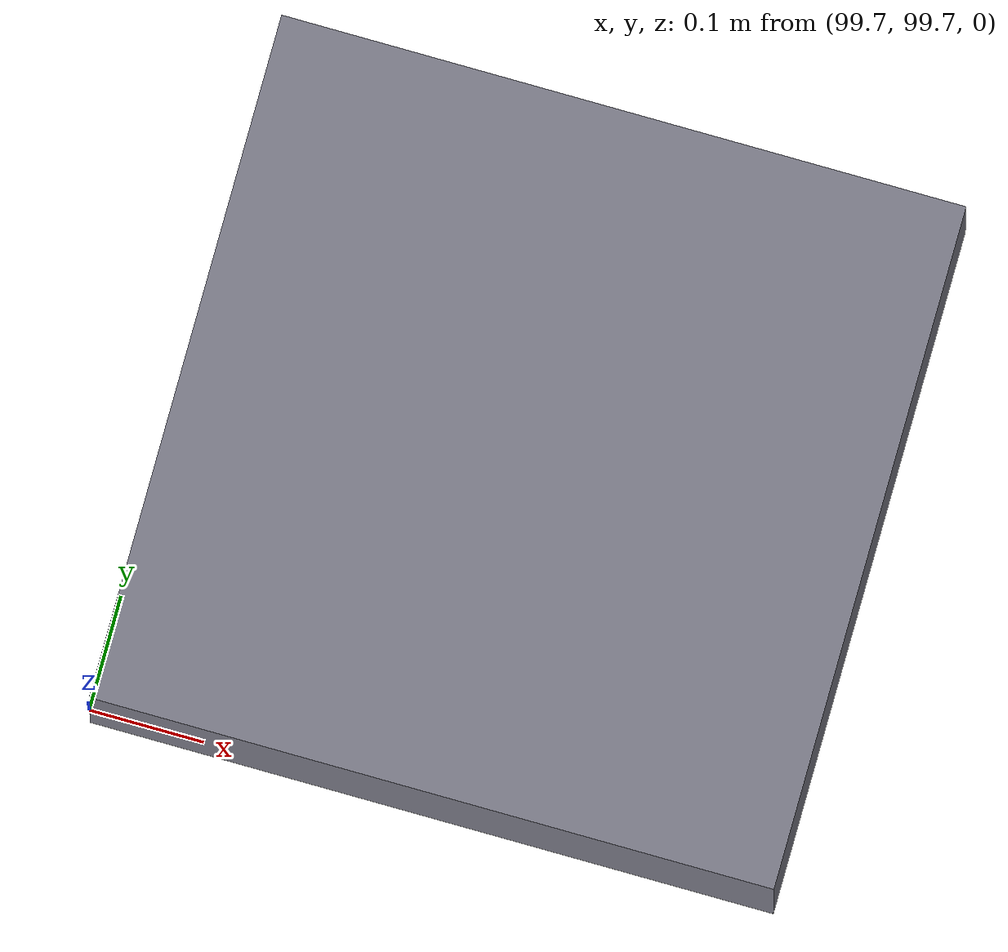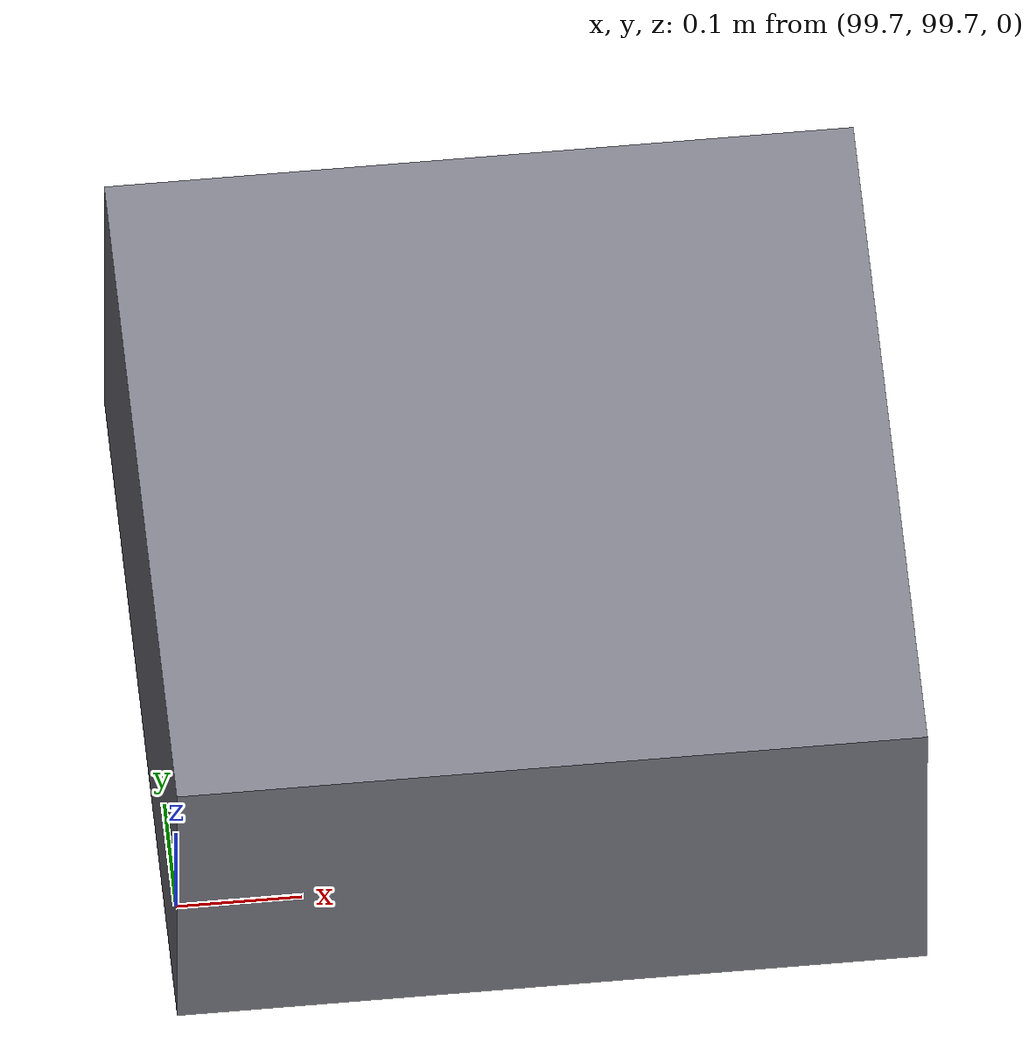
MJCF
<mujoco model="omnicar_skid">
  <compiler angle="degree" coordinate="local"/>
  <option timestep="0.02" gravity="0 0 -9.81" iterations="50"/>

  <worldbody>
    <geom name="floor" type="plane" size="20 20 0.1" rgba="0.92 0.92 0.92 1" friction="1.2 0.005 0.0001"/>

    <!-- Robot -->
    <body name="base" pos="0 0 0.08">
      <freejoint/>
      <geom name="chassis" type="box" size="0.1535 0.1235 0.02" rgba="0.12 0.12 0.12 1" density="250"/>

      <!-- Wheels: cylinder axis along Y (left-right), so rotate cylinder 90deg about X -->
      <body name="wheel_fl" pos="0.105 0.101 0.00">
        <joint name="wheel_fl_hinge" type="hinge" axis="0 1 0" damping="0.05" armature="0.01"/>
        <geom name="wheel_fl_geom" type="cylinder" size="0.0485 0.020" euler="90 0 0" rgba="0.2 0.2 0.2 1" density="300" friction="2.0 0.005 0.0001"/>
      </body>

      <body name="wheel_fr" pos="0.105 -0.101 0.00">
        <joint name="wheel_fr_hinge" type="hinge" axis="0 1 0" damping="0.05" armature="0.01"/>
        <geom name="wheel_fr_geom" type="cylinder" size="0.0485 0.020" euler="90 0 0" rgba="0.2 0.2 0.2 1" density="300" friction="2.0 0.005 0.0001"/>
      </body>

      <body name="wheel_rl" pos="-0.105 0.101 0.00">
        <joint name="wheel_rl_hinge" type="hinge" axis="0 1 0" damping="0.05" armature="0.01"/>
        <geom name="wheel_rl_geom" type="cylinder" size="0.0485 0.020" euler="90 0 0" rgba="0.2 0.2 0.2 1" density="300" friction="2.0 0.005 0.0001"/>
      </body>

      <body name="wheel_rr" pos="-0.105 -0.101 0.00">
        <joint name="wheel_rr_hinge" type="hinge" axis="0 1 0" damping="0.05" armature="0.01"/>
        <geom name="wheel_rr_geom" type="cylinder" size="0.0485 0.020" euler="90 0 0" rgba="0.2 0.2 0.2 1" density="300" friction="2.0 0.005 0.0001"/>
      </body>

      <camera name="front" pos="0.15 0 0.12" xyaxes="0 -1 0 0 0 1"/>
      <camera name="track" mode="trackcom" pos="0 -3 1.5" xyaxes="1 0 0 0 1 0"/>
      <camera name="bev" mode="trackcom" pos="0 0 5" xyaxes="1 0 0 0 1 0"/>
    </body>

    <!-- Goal marker: bright green cylinder, clearly visible -->
    <site name="goal" type="cylinder" pos="2 0 0.15" size="0.25 0.3" rgba="0.1 0.95 0.3 0.9"/>

    <!-- Kinematic obstacles (mocap bodies). We'll move/resize them from Python. -->
    <!-- Default placed far away. -->
    <!-- 30 obstacles -->
    <body name="obs_00" mocap="true" pos="100 100 0"><geom name="obs_00_geom" type="box" size="0.3 0.3 0.15" rgba="0.5 0.5 0.55 1"/></body>
    <body name="obs_01" mocap="true" pos="100 100 0"><geom name="obs_01_geom" type="box" size="0.3 0.3 0.15" rgba="0.5 0.5 0.55 1"/></body>
    <body name="obs_02" mocap="true" pos="100 100 0"><geom name="obs_02_geom" type="box" size="0.3 0.3 0.15" rgba="0.5 0.5 0.55 1"/></body>
    <body name="obs_03" mocap="true" pos="100 100 0"><geom name="obs_03_geom" type="box" size="0.3 0.3 0.15" rgba="0.5 0.5 0.55 1"/></body>
    <body name="obs_04" mocap="true" pos="100 100 0"><geom name="obs_04_geom" type="box" size="0.3 0.3 0.15" rgba="0.5 0.5 0.55 1"/></body>
    <body name="obs_05" mocap="true" pos="100 100 0"><geom name="obs_05_geom" type="box" size="0.3 0.3 0.15" rgba="0.5 0.5 0.55 1"/></body>
    <body name="obs_06" mocap="true" pos="100 100 0"><geom name="obs_06_geom" type="box" size="0.3 0.3 0.15" rgba="0.5 0.5 0.55 1"/></body>
    <body name="obs_07" mocap="true" pos="100 100 0"><geom name="obs_07_geom" type="box" size="0.3 0.3 0.15" rgba="0.5 0.5 0.55 1"/></body>
    <body name="obs_08" mocap="true" pos="100 100 0"><geom name="obs_08_geom" type="box" size="0.3 0.3 0.15" rgba="0.5 0.5 0.55 1"/></body>
    <body name="obs_09" mocap="true" pos="100 100 0"><geom name="obs_09_geom" type="box" size="0.3 0.3 0.15" rgba="0.5 0.5 0.55 1"/></body>
    <body name="obs_10" mocap="true" pos="100 100 0"><geom name="obs_10_geom" type="box" size="0.3 0.3 0.15" rgba="0.5 0.5 0.55 1"/></body>
    <body name="obs_11" mocap="true" pos="100 100 0"><geom name="obs_11_geom" type="box" size="0.3 0.3 0.15" rgba="0.5 0.5 0.55 1"/></body>
    <body name="obs_12" mocap="true" pos="100 100 0"><geom name="obs_12_geom" type="box" size="0.3 0.3 0.15" rgba="0.5 0.5 0.55 1"/></body>
    <body name="obs_13" mocap="true" pos="100 100 0"><geom name="obs_13_geom" type="box" size="0.3 0.3 0.15" rgba="0.5 0.5 0.55 1"/></body>
    <body name="obs_14" mocap="true" pos="100 100 0"><geom name="obs_14_geom" type="box" size="0.3 0.3 0.15" rgba="0.5 0.5 0.55 1"/></body>
    <body name="obs_15" mocap="true" pos="100 100 0"><geom name="obs_15_geom" type="box" size="0.3 0.3 0.15" rgba="0.5 0.5 0.55 1"/></body>
    <body name="obs_16" mocap="true" pos="100 100 0"><geom name="obs_16_geom" type="box" size="0.3 0.3 0.15" rgba="0.5 0.5 0.55 1"/></body>
    <body name="obs_17" mocap="true" pos="100 100 0"><geom name="obs_17_geom" type="box" size="0.3 0.3 0.15" rgba="0.5 0.5 0.55 1"/></body>
    <body name="obs_18" mocap="true" pos="100 100 0"><geom name="obs_18_geom" type="box" size="0.3 0.3 0.15" rgba="0.5 0.5 0.55 1"/></body>
    <body name="obs_19" mocap="true" pos="100 100 0"><geom name="obs_19_geom" type="box" size="0.3 0.3 0.15" rgba="0.5 0.5 0.55 1"/></body>
    <body name="obs_20" mocap="true" pos="100 100 0"><geom name="obs_20_geom" type="box" size="0.3 0.3 0.15" rgba="0.5 0.5 0.55 1"/></body>
    <body name="obs_21" mocap="true" pos="100 100 0"><geom name="obs_21_geom" type="box" size="0.3 0.3 0.15" rgba="0.5 0.5 0.55 1"/></body>
    <body name="obs_22" mocap="true" pos="100 100 0"><geom name="obs_22_geom" type="box" size="0.3 0.3 0.15" rgba="0.5 0.5 0.55 1"/></body>
    <body name="obs_23" mocap="true" pos="100 100 0"><geom name="obs_23_geom" type="box" size="0.3 0.3 0.15" rgba="0.5 0.5 0.55 1"/></body>
    <body name="obs_24" mocap="true" pos="100 100 0"><geom name="obs_24_geom" type="box" size="0.3 0.3 0.15" rgba="0.5 0.5 0.55 1"/></body>
    <body name="obs_25" mocap="true" pos="100 100 0"><geom name="obs_25_geom" type="box" size="0.3 0.3 0.15" rgba="0.5 0.5 0.55 1"/></body>
    <body name="obs_26" mocap="true" pos="100 100 0"><geom name="obs_26_geom" type="box" size="0.3 0.3 0.15" rgba="0.5 0.5 0.55 1"/></body>
    <body name="obs_27" mocap="true" pos="100 100 0"><geom name="obs_27_geom" type="box" size="0.3 0.3 0.15" rgba="0.5 0.5 0.55 1"/></body>
    <body name="obs_28" mocap="true" pos="100 100 0"><geom name="obs_28_geom" type="box" size="0.3 0.3 0.15" rgba="0.5 0.5 0.55 1"/></body>
    <body name="obs_29" mocap="true" pos="100 100 0"><geom name="obs_29_geom" type="box" size="0.3 0.3 0.15" rgba="0.5 0.5 0.55 1"/></body>
  </worldbody>

  <actuator>
    <velocity name="act_fl" joint="wheel_fl_hinge" kv="0.2"/>
    <velocity name="act_fr" joint="wheel_fr_hinge" kv="0.2"/>
    <velocity name="act_rl" joint="wheel_rl_hinge" kv="0.2"/>
    <velocity name="act_rr" joint="wheel_rr_hinge" kv="0.2"/>
  </actuator>
</mujoco>
